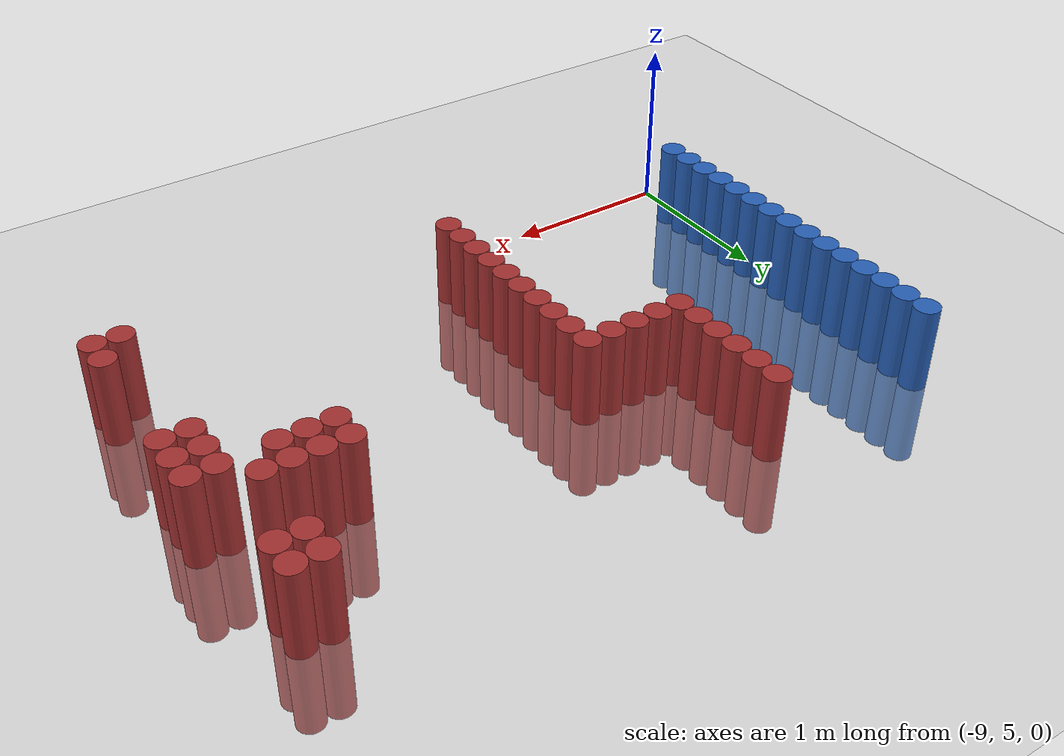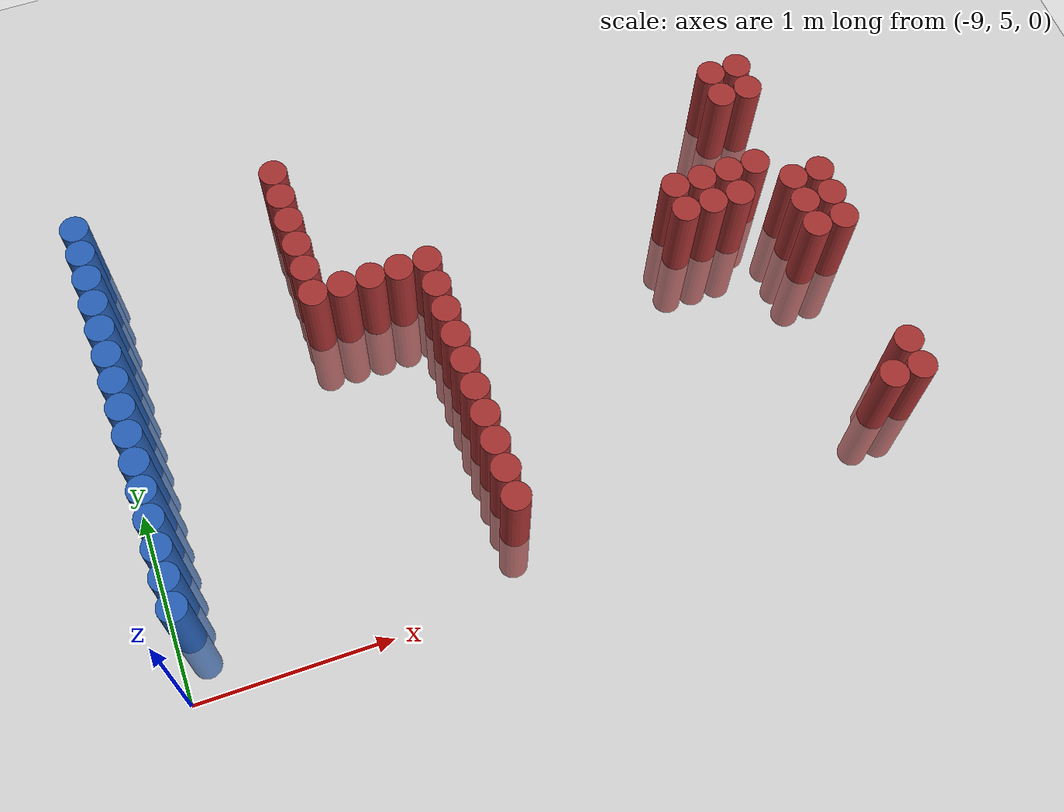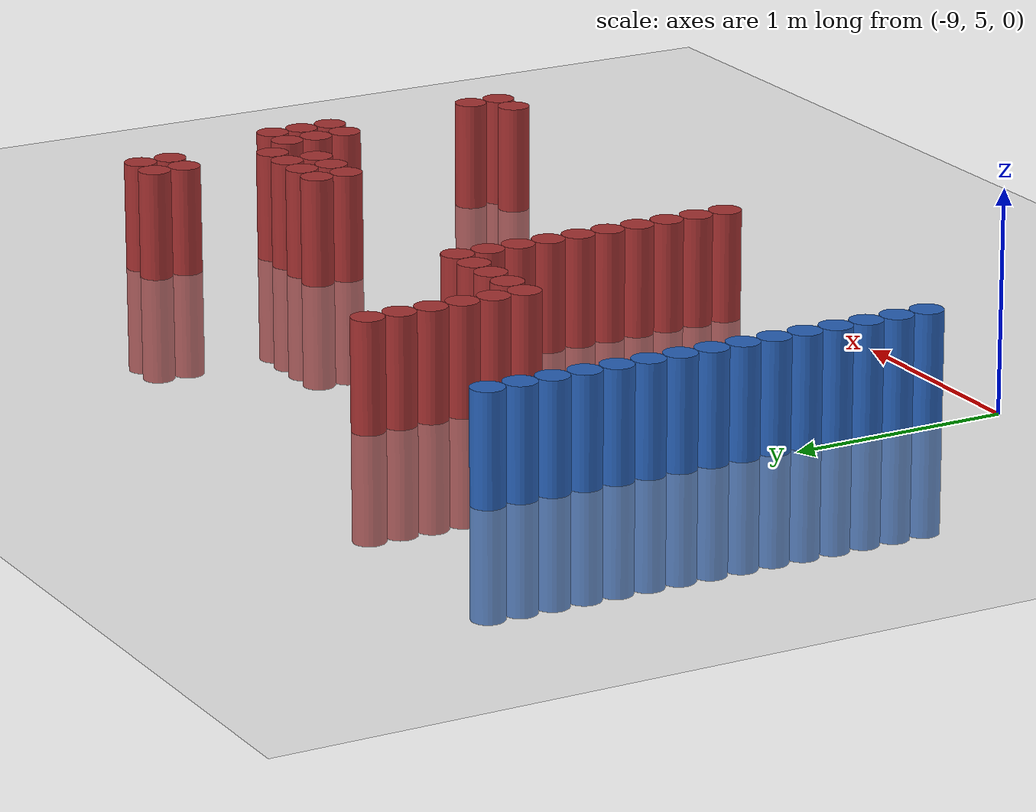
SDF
<sdf version="1.6">
 <world name="default">
  <model name="ground_plane">
   <static>1</static>
   <link name="link">
    <collision name="collision">
     <geometry><plane><normal>0 0 1</normal><size>100 100</size></plane></geometry>
     <surface><friction><ode><mu>100</mu><mu2>50</mu2></ode></friction></surface>
    </collision>
    <visual name="visual">
     <cast_shadows>0</cast_shadows>
     <geometry><plane><normal>0 0 1</normal><size>100 100</size></plane></geometry>
     <material>
      <script><uri>file://media/materials/scripts/gazebo.material</uri><name>Gazebo/Grey</name></script>
     </material>
    </visual>
   </link>
  </model>
  <model name="unit_cylinder_126">
   <static>1</static>
   <pose>-8.925000 5.325000 0.000000 0.000000 0.000000 0.000000</pose>
   <link name="link">
    <inertial>
     <mass>1</mass>
     <inertia><ixx>0.145833</ixx><ixy>0</ixy><ixz>0</ixz><iyy>0.145833</iyy><iyz>0</iyz><izz>0.125</izz></inertia>
    </inertial>
    <collision name="collision">
     <geometry><cylinder><radius>0.075000</radius><length>1</length></cylinder></geometry>
    </collision>
    <visual name="visual">
     <geometry><cylinder><radius>0.075000</radius><length>1</length></cylinder></geometry>
     <material>
      <ambient>0.152000 0.379000 0.720000 1</ambient>
      <diffuse>0.152000 0.379000 0.720000 1</diffuse>
     </material>
     <material>
      <script><name>Gazebo/Grey</name><uri>file://media/materials/scripts/gazebo.material</uri></script>
     </material>
    </visual>
   </link>
  </model>
  <model name="unit_cylinder_127">
   <static>1</static>
   <pose>-8.925000 5.475000 0.000000 0.000000 0.000000 0.000000</pose>
   <link name="link">
    <inertial>
     <mass>1</mass>
     <inertia><ixx>0.145833</ixx><ixy>0</ixy><ixz>0</ixz><iyy>0.145833</iyy><iyz>0</iyz><izz>0.125</izz></inertia>
    </inertial>
    <collision name="collision">
     <geometry><cylinder><radius>0.075000</radius><length>1</length></cylinder></geometry>
    </collision>
    <visual name="visual">
     <geometry><cylinder><radius>0.075000</radius><length>1</length></cylinder></geometry>
     <material>
      <ambient>0.152000 0.379000 0.720000 1</ambient>
      <diffuse>0.152000 0.379000 0.720000 1</diffuse>
     </material>
     <material>
      <script><name>Gazebo/Grey</name><uri>file://media/materials/scripts/gazebo.material</uri></script>
     </material>
    </visual>
   </link>
  </model>
  <model name="unit_cylinder_128">
   <static>1</static>
   <pose>-8.925000 5.625000 0.000000 0.000000 0.000000 0.000000</pose>
   <link name="link">
    <inertial>
     <mass>1</mass>
     <inertia><ixx>0.145833</ixx><ixy>0</ixy><ixz>0</ixz><iyy>0.145833</iyy><iyz>0</iyz><izz>0.125</izz></inertia>
    </inertial>
    <collision name="collision">
     <geometry><cylinder><radius>0.075000</radius><length>1</length></cylinder></geometry>
    </collision>
    <visual name="visual">
     <geometry><cylinder><radius>0.075000</radius><length>1</length></cylinder></geometry>
     <material>
      <ambient>0.152000 0.379000 0.720000 1</ambient>
      <diffuse>0.152000 0.379000 0.720000 1</diffuse>
     </material>
     <material>
      <script><name>Gazebo/Grey</name><uri>file://media/materials/scripts/gazebo.material</uri></script>
     </material>
    </visual>
   </link>
  </model>
  <model name="unit_cylinder_129">
   <static>1</static>
   <pose>-8.925000 5.775000 0.000000 0.000000 0.000000 0.000000</pose>
   <link name="link">
    <inertial>
     <mass>1</mass>
     <inertia><ixx>0.145833</ixx><ixy>0</ixy><ixz>0</ixz><iyy>0.145833</iyy><iyz>0</iyz><izz>0.125</izz></inertia>
    </inertial>
    <collision name="collision">
     <geometry><cylinder><radius>0.075000</radius><length>1</length></cylinder></geometry>
    </collision>
    <visual name="visual">
     <geometry><cylinder><radius>0.075000</radius><length>1</length></cylinder></geometry>
     <material>
      <ambient>0.152000 0.379000 0.720000 1</ambient>
      <diffuse>0.152000 0.379000 0.720000 1</diffuse>
     </material>
     <material>
      <script><name>Gazebo/Grey</name><uri>file://media/materials/scripts/gazebo.material</uri></script>
     </material>
    </visual>
   </link>
  </model>
  <model name="unit_cylinder_130">
   <static>1</static>
   <pose>-8.925000 5.925000 0.000000 0.000000 0.000000 0.000000</pose>
   <link name="link">
    <inertial>
     <mass>1</mass>
     <inertia><ixx>0.145833</ixx><ixy>0</ixy><ixz>0</ixz><iyy>0.145833</iyy><iyz>0</iyz><izz>0.125</izz></inertia>
    </inertial>
    <collision name="collision">
     <geometry><cylinder><radius>0.075000</radius><length>1</length></cylinder></geometry>
    </collision>
    <visual name="visual">
     <geometry><cylinder><radius>0.075000</radius><length>1</length></cylinder></geometry>
     <material>
      <ambient>0.152000 0.379000 0.720000 1</ambient>
      <diffuse>0.152000 0.379000 0.720000 1</diffuse>
     </material>
     <material>
      <script><name>Gazebo/Grey</name><uri>file://media/materials/scripts/gazebo.material</uri></script>
     </material>
    </visual>
   </link>
  </model>
  <model name="unit_cylinder_131">
   <static>1</static>
   <pose>-8.925000 6.075000 0.000000 0.000000 0.000000 0.000000</pose>
   <link name="link">
    <inertial>
     <mass>1</mass>
     <inertia><ixx>0.145833</ixx><ixy>0</ixy><ixz>0</ixz><iyy>0.145833</iyy><iyz>0</iyz><izz>0.125</izz></inertia>
    </inertial>
    <collision name="collision">
     <geometry><cylinder><radius>0.075000</radius><length>1</length></cylinder></geometry>
    </collision>
    <visual name="visual">
     <geometry><cylinder><radius>0.075000</radius><length>1</length></cylinder></geometry>
     <material>
      <ambient>0.152000 0.379000 0.720000 1</ambient>
      <diffuse>0.152000 0.379000 0.720000 1</diffuse>
     </material>
     <material>
      <script><name>Gazebo/Grey</name><uri>file://media/materials/scripts/gazebo.material</uri></script>
     </material>
    </visual>
   </link>
  </model>
  <model name="unit_cylinder_132">
   <static>1</static>
   <pose>-8.925000 6.225000 0.000000 0.000000 0.000000 0.000000</pose>
   <link name="link">
    <inertial>
     <mass>1</mass>
     <inertia><ixx>0.145833</ixx><ixy>0</ixy><ixz>0</ixz><iyy>0.145833</iyy><iyz>0</iyz><izz>0.125</izz></inertia>
    </inertial>
    <collision name="collision">
     <geometry><cylinder><radius>0.075000</radius><length>1</length></cylinder></geometry>
    </collision>
    <visual name="visual">
     <geometry><cylinder><radius>0.075000</radius><length>1</length></cylinder></geometry>
     <material>
      <ambient>0.152000 0.379000 0.720000 1</ambient>
      <diffuse>0.152000 0.379000 0.720000 1</diffuse>
     </material>
     <material>
      <script><name>Gazebo/Grey</name><uri>file://media/materials/scripts/gazebo.material</uri></script>
     </material>
    </visual>
   </link>
  </model>
  <model name="unit_cylinder_133">
   <static>1</static>
   <pose>-8.925000 6.375000 0.000000 0.000000 0.000000 0.000000</pose>
   <link name="link">
    <inertial>
     <mass>1</mass>
     <inertia><ixx>0.145833</ixx><ixy>0</ixy><ixz>0</ixz><iyy>0.145833</iyy><iyz>0</iyz><izz>0.125</izz></inertia>
    </inertial>
    <collision name="collision">
     <geometry><cylinder><radius>0.075000</radius><length>1</length></cylinder></geometry>
    </collision>
    <visual name="visual">
     <geometry><cylinder><radius>0.075000</radius><length>1</length></cylinder></geometry>
     <material>
      <ambient>0.152000 0.379000 0.720000 1</ambient>
      <diffuse>0.152000 0.379000 0.720000 1</diffuse>
     </material>
     <material>
      <script><name>Gazebo/Grey</name><uri>file://media/materials/scripts/gazebo.material</uri></script>
     </material>
    </visual>
   </link>
  </model>
  <model name="unit_cylinder_134">
   <static>1</static>
   <pose>-8.925000 6.525000 0.000000 0.000000 0.000000 0.000000</pose>
   <link name="link">
    <inertial>
     <mass>1</mass>
     <inertia><ixx>0.145833</ixx><ixy>0</ixy><ixz>0</ixz><iyy>0.145833</iyy><iyz>0</iyz><izz>0.125</izz></inertia>
    </inertial>
    <collision name="collision">
     <geometry><cylinder><radius>0.075000</radius><length>1</length></cylinder></geometry>
    </collision>
    <visual name="visual">
     <geometry><cylinder><radius>0.075000</radius><length>1</length></cylinder></geometry>
     <material>
      <ambient>0.152000 0.379000 0.720000 1</ambient>
      <diffuse>0.152000 0.379000 0.720000 1</diffuse>
     </material>
     <material>
      <script><name>Gazebo/Grey</name><uri>file://media/materials/scripts/gazebo.material</uri></script>
     </material>
    </visual>
   </link>
  </model>
  <model name="unit_cylinder_135">
   <static>1</static>
   <pose>-8.925000 6.675000 0.000000 0.000000 0.000000 0.000000</pose>
   <link name="link">
    <inertial>
     <mass>1</mass>
     <inertia><ixx>0.145833</ixx><ixy>0</ixy><ixz>0</ixz><iyy>0.145833</iyy><iyz>0</iyz><izz>0.125</izz></inertia>
    </inertial>
    <collision name="collision">
     <geometry><cylinder><radius>0.075000</radius><length>1</length></cylinder></geometry>
    </collision>
    <visual name="visual">
     <geometry><cylinder><radius>0.075000</radius><length>1</length></cylinder></geometry>
     <material>
      <ambient>0.152000 0.379000 0.720000 1</ambient>
      <diffuse>0.152000 0.379000 0.720000 1</diffuse>
     </material>
     <material>
      <script><name>Gazebo/Grey</name><uri>file://media/materials/scripts/gazebo.material</uri></script>
     </material>
    </visual>
   </link>
  </model>
  <model name="unit_cylinder_136">
   <static>1</static>
   <pose>-8.925000 6.825000 0.000000 0.000000 0.000000 0.000000</pose>
   <link name="link">
    <inertial>
     <mass>1</mass>
     <inertia><ixx>0.145833</ixx><ixy>0</ixy><ixz>0</ixz><iyy>0.145833</iyy><iyz>0</iyz><izz>0.125</izz></inertia>
    </inertial>
    <collision name="collision">
     <geometry><cylinder><radius>0.075000</radius><length>1</length></cylinder></geometry>
    </collision>
    <visual name="visual">
     <geometry><cylinder><radius>0.075000</radius><length>1</length></cylinder></geometry>
     <material>
      <ambient>0.152000 0.379000 0.720000 1</ambient>
      <diffuse>0.152000 0.379000 0.720000 1</diffuse>
     </material>
     <material>
      <script><name>Gazebo/Grey</name><uri>file://media/materials/scripts/gazebo.material</uri></script>
     </material>
    </visual>
   </link>
  </model>
  <model name="unit_cylinder_137">
   <static>1</static>
   <pose>-8.925000 6.975000 0.000000 0.000000 0.000000 0.000000</pose>
   <link name="link">
    <inertial>
     <mass>1</mass>
     <inertia><ixx>0.145833</ixx><ixy>0</ixy><ixz>0</ixz><iyy>0.145833</iyy><iyz>0</iyz><izz>0.125</izz></inertia>
    </inertial>
    <collision name="collision">
     <geometry><cylinder><radius>0.075000</radius><length>1</length></cylinder></geometry>
    </collision>
    <visual name="visual">
     <geometry><cylinder><radius>0.075000</radius><length>1</length></cylinder></geometry>
     <material>
      <ambient>0.152000 0.379000 0.720000 1</ambient>
      <diffuse>0.152000 0.379000 0.720000 1</diffuse>
     </material>
     <material>
      <script><name>Gazebo/Grey</name><uri>file://media/materials/scripts/gazebo.material</uri></script>
     </material>
    </visual>
   </link>
  </model>
  <model name="unit_cylinder_138">
   <static>1</static>
   <pose>-8.925000 7.125000 0.000000 0.000000 0.000000 0.000000</pose>
   <link name="link">
    <inertial>
     <mass>1</mass>
     <inertia><ixx>0.145833</ixx><ixy>0</ixy><ixz>0</ixz><iyy>0.145833</iyy><iyz>0</iyz><izz>0.125</izz></inertia>
    </inertial>
    <collision name="collision">
     <geometry><cylinder><radius>0.075000</radius><length>1</length></cylinder></geometry>
    </collision>
    <visual name="visual">
     <geometry><cylinder><radius>0.075000</radius><length>1</length></cylinder></geometry>
     <material>
      <ambient>0.152000 0.379000 0.720000 1</ambient>
      <diffuse>0.152000 0.379000 0.720000 1</diffuse>
     </material>
     <material>
      <script><name>Gazebo/Grey</name><uri>file://media/materials/scripts/gazebo.material</uri></script>
     </material>
    </visual>
   </link>
  </model>
  <model name="unit_cylinder_139">
   <static>1</static>
   <pose>-8.925000 7.275000 0.000000 0.000000 0.000000 0.000000</pose>
   <link name="link">
    <inertial>
     <mass>1</mass>
     <inertia><ixx>0.145833</ixx><ixy>0</ixy><ixz>0</ixz><iyy>0.145833</iyy><iyz>0</iyz><izz>0.125</izz></inertia>
    </inertial>
    <collision name="collision">
     <geometry><cylinder><radius>0.075000</radius><length>1</length></cylinder></geometry>
    </collision>
    <visual name="visual">
     <geometry><cylinder><radius>0.075000</radius><length>1</length></cylinder></geometry>
     <material>
      <ambient>0.152000 0.379000 0.720000 1</ambient>
      <diffuse>0.152000 0.379000 0.720000 1</diffuse>
     </material>
     <material>
      <script><name>Gazebo/Grey</name><uri>file://media/materials/scripts/gazebo.material</uri></script>
     </material>
    </visual>
   </link>
  </model>
  <model name="unit_cylinder_140">
   <static>1</static>
   <pose>-8.925000 7.425000 0.000000 0.000000 0.000000 0.000000</pose>
   <link name="link">
    <inertial>
     <mass>1</mass>
     <inertia><ixx>0.145833</ixx><ixy>0</ixy><ixz>0</ixz><iyy>0.145833</iyy><iyz>0</iyz><izz>0.125</izz></inertia>
    </inertial>
    <collision name="collision">
     <geometry><cylinder><radius>0.075000</radius><length>1</length></cylinder></geometry>
    </collision>
    <visual name="visual">
     <geometry><cylinder><radius>0.075000</radius><length>1</length></cylinder></geometry>
     <material>
      <ambient>0.152000 0.379000 0.720000 1</ambient>
      <diffuse>0.152000 0.379000 0.720000 1</diffuse>
     </material>
     <material>
      <script><name>Gazebo/Grey</name><uri>file://media/materials/scripts/gazebo.material</uri></script>
     </material>
    </visual>
   </link>
  </model>
  <model name="unit_cylinder_168">
   <static>1</static>
   <pose>-7.875000 6.675000 0.000000 0.000000 0.000000 0.000000</pose>
   <link name="link">
    <inertial>
     <mass>1</mass>
     <inertia><ixx>0.145833</ixx><ixy>0</ixy><ixz>0</ixz><iyy>0.145833</iyy><iyz>0</iyz><izz>0.125</izz></inertia>
    </inertial>
    <collision name="collision">
     <geometry><cylinder><radius>0.075000</radius><length>1</length></cylinder></geometry>
    </collision>
    <visual name="visual">
     <geometry><cylinder><radius>0.075000</radius><length>1</length></cylinder></geometry>
     <material>
      <ambient>0.648000 0.192000 0.192000 1</ambient>
      <diffuse>0.648000 0.192000 0.192000 1</diffuse>
     </material>
     <material>
      <script><name>Gazebo/Grey</name><uri>file://media/materials/scripts/gazebo.material</uri></script>
     </material>
    </visual>
   </link>
  </model>
  <model name="unit_cylinder_169">
   <static>1</static>
   <pose>-7.875000 6.825000 0.000000 0.000000 0.000000 0.000000</pose>
   <link name="link">
    <inertial>
     <mass>1</mass>
     <inertia><ixx>0.145833</ixx><ixy>0</ixy><ixz>0</ixz><iyy>0.145833</iyy><iyz>0</iyz><izz>0.125</izz></inertia>
    </inertial>
    <collision name="collision">
     <geometry><cylinder><radius>0.075000</radius><length>1</length></cylinder></geometry>
    </collision>
    <visual name="visual">
     <geometry><cylinder><radius>0.075000</radius><length>1</length></cylinder></geometry>
     <material>
      <ambient>0.648000 0.192000 0.192000 1</ambient>
      <diffuse>0.648000 0.192000 0.192000 1</diffuse>
     </material>
     <material>
      <script><name>Gazebo/Grey</name><uri>file://media/materials/scripts/gazebo.material</uri></script>
     </material>
    </visual>
   </link>
  </model>
  <model name="unit_cylinder_170">
   <static>1</static>
   <pose>-7.875000 6.975000 0.000000 0.000000 0.000000 0.000000</pose>
   <link name="link">
    <inertial>
     <mass>1</mass>
     <inertia><ixx>0.145833</ixx><ixy>0</ixy><ixz>0</ixz><iyy>0.145833</iyy><iyz>0</iyz><izz>0.125</izz></inertia>
    </inertial>
    <collision name="collision">
     <geometry><cylinder><radius>0.075000</radius><length>1</length></cylinder></geometry>
    </collision>
    <visual name="visual">
     <geometry><cylinder><radius>0.075000</radius><length>1</length></cylinder></geometry>
     <material>
      <ambient>0.648000 0.192000 0.192000 1</ambient>
      <diffuse>0.648000 0.192000 0.192000 1</diffuse>
     </material>
     <material>
      <script><name>Gazebo/Grey</name><uri>file://media/materials/scripts/gazebo.material</uri></script>
     </material>
    </visual>
   </link>
  </model>
  <model name="unit_cylinder_171">
   <static>1</static>
   <pose>-7.875000 7.125000 0.000000 0.000000 0.000000 0.000000</pose>
   <link name="link">
    <inertial>
     <mass>1</mass>
     <inertia><ixx>0.145833</ixx><ixy>0</ixy><ixz>0</ixz><iyy>0.145833</iyy><iyz>0</iyz><izz>0.125</izz></inertia>
    </inertial>
    <collision name="collision">
     <geometry><cylinder><radius>0.075000</radius><length>1</length></cylinder></geometry>
    </collision>
    <visual name="visual">
     <geometry><cylinder><radius>0.075000</radius><length>1</length></cylinder></geometry>
     <material>
      <ambient>0.648000 0.192000 0.192000 1</ambient>
      <diffuse>0.648000 0.192000 0.192000 1</diffuse>
     </material>
     <material>
      <script><name>Gazebo/Grey</name><uri>file://media/materials/scripts/gazebo.material</uri></script>
     </material>
    </visual>
   </link>
  </model>
  <model name="unit_cylinder_172">
   <static>1</static>
   <pose>-7.875000 7.275000 0.000000 0.000000 0.000000 0.000000</pose>
   <link name="link">
    <inertial>
     <mass>1</mass>
     <inertia><ixx>0.145833</ixx><ixy>0</ixy><ixz>0</ixz><iyy>0.145833</iyy><iyz>0</iyz><izz>0.125</izz></inertia>
    </inertial>
    <collision name="collision">
     <geometry><cylinder><radius>0.075000</radius><length>1</length></cylinder></geometry>
    </collision>
    <visual name="visual">
     <geometry><cylinder><radius>0.075000</radius><length>1</length></cylinder></geometry>
     <material>
      <ambient>0.648000 0.192000 0.192000 1</ambient>
      <diffuse>0.648000 0.192000 0.192000 1</diffuse>
     </material>
     <material>
      <script><name>Gazebo/Grey</name><uri>file://media/materials/scripts/gazebo.material</uri></script>
     </material>
    </visual>
   </link>
  </model>
  <model name="unit_cylinder_173">
   <static>1</static>
   <pose>-7.875000 7.425000 0.000000 0.000000 0.000000 0.000000</pose>
   <link name="link">
    <inertial>
     <mass>1</mass>
     <inertia><ixx>0.145833</ixx><ixy>0</ixy><ixz>0</ixz><iyy>0.145833</iyy><iyz>0</iyz><izz>0.125</izz></inertia>
    </inertial>
    <collision name="collision">
     <geometry><cylinder><radius>0.075000</radius><length>1</length></cylinder></geometry>
    </collision>
    <visual name="visual">
     <geometry><cylinder><radius>0.075000</radius><length>1</length></cylinder></geometry>
     <material>
      <ambient>0.648000 0.192000 0.192000 1</ambient>
      <diffuse>0.648000 0.192000 0.192000 1</diffuse>
     </material>
     <material>
      <script><name>Gazebo/Grey</name><uri>file://media/materials/scripts/gazebo.material</uri></script>
     </material>
    </visual>
   </link>
  </model>
  <model name="unit_cylinder_189">
   <static>1</static>
   <pose>-7.725000 6.675000 0.000000 0.000000 0.000000 0.000000</pose>
   <link name="link">
    <inertial>
     <mass>1</mass>
     <inertia><ixx>0.145833</ixx><ixy>0</ixy><ixz>0</ixz><iyy>0.145833</iyy><iyz>0</iyz><izz>0.125</izz></inertia>
    </inertial>
    <collision name="collision">
     <geometry><cylinder><radius>0.075000</radius><length>1</length></cylinder></geometry>
    </collision>
    <visual name="visual">
     <geometry><cylinder><radius>0.075000</radius><length>1</length></cylinder></geometry>
     <material>
      <ambient>0.648000 0.192000 0.192000 1</ambient>
      <diffuse>0.648000 0.192000 0.192000 1</diffuse>
     </material>
     <material>
      <script><name>Gazebo/Grey</name><uri>file://media/materials/scripts/gazebo.material</uri></script>
     </material>
    </visual>
   </link>
  </model>
  <model name="unit_cylinder_192">
   <static>1</static>
   <pose>-7.575000 6.675000 0.000000 0.000000 0.000000 0.000000</pose>
   <link name="link">
    <inertial>
     <mass>1</mass>
     <inertia><ixx>0.145833</ixx><ixy>0</ixy><ixz>0</ixz><iyy>0.145833</iyy><iyz>0</iyz><izz>0.125</izz></inertia>
    </inertial>
    <collision name="collision">
     <geometry><cylinder><radius>0.075000</radius><length>1</length></cylinder></geometry>
    </collision>
    <visual name="visual">
     <geometry><cylinder><radius>0.075000</radius><length>1</length></cylinder></geometry>
     <material>
      <ambient>0.648000 0.192000 0.192000 1</ambient>
      <diffuse>0.648000 0.192000 0.192000 1</diffuse>
     </material>
     <material>
      <script><name>Gazebo/Grey</name><uri>file://media/materials/scripts/gazebo.material</uri></script>
     </material>
    </visual>
   </link>
  </model>
  <model name="unit_cylinder_194">
   <static>1</static>
   <pose>-7.425000 6.675000 0.000000 0.000000 0.000000 0.000000</pose>
   <link name="link">
    <inertial>
     <mass>1</mass>
     <inertia><ixx>0.145833</ixx><ixy>0</ixy><ixz>0</ixz><iyy>0.145833</iyy><iyz>0</iyz><izz>0.125</izz></inertia>
    </inertial>
    <collision name="collision">
     <geometry><cylinder><radius>0.075000</radius><length>1</length></cylinder></geometry>
    </collision>
    <visual name="visual">
     <geometry><cylinder><radius>0.075000</radius><length>1</length></cylinder></geometry>
     <material>
      <ambient>0.648000 0.192000 0.192000 1</ambient>
      <diffuse>0.648000 0.192000 0.192000 1</diffuse>
     </material>
     <material>
      <script><name>Gazebo/Grey</name><uri>file://media/materials/scripts/gazebo.material</uri></script>
     </material>
    </visual>
   </link>
  </model>
  <model name="unit_cylinder_196">
   <static>1</static>
   <pose>-7.275000 5.325000 0.000000 0.000000 0.000000 0.000000</pose>
   <link name="link">
    <inertial>
     <mass>1</mass>
     <inertia><ixx>0.145833</ixx><ixy>0</ixy><ixz>0</ixz><iyy>0.145833</iyy><iyz>0</iyz><izz>0.125</izz></inertia>
    </inertial>
    <collision name="collision">
     <geometry><cylinder><radius>0.075000</radius><length>1</length></cylinder></geometry>
    </collision>
    <visual name="visual">
     <geometry><cylinder><radius>0.075000</radius><length>1</length></cylinder></geometry>
     <material>
      <ambient>0.648000 0.192000 0.192000 1</ambient>
      <diffuse>0.648000 0.192000 0.192000 1</diffuse>
     </material>
     <material>
      <script><name>Gazebo/Grey</name><uri>file://media/materials/scripts/gazebo.material</uri></script>
     </material>
    </visual>
   </link>
  </model>
  <model name="unit_cylinder_197">
   <static>1</static>
   <pose>-7.275000 5.475000 0.000000 0.000000 0.000000 0.000000</pose>
   <link name="link">
    <inertial>
     <mass>1</mass>
     <inertia><ixx>0.145833</ixx><ixy>0</ixy><ixz>0</ixz><iyy>0.145833</iyy><iyz>0</iyz><izz>0.125</izz></inertia>
    </inertial>
    <collision name="collision">
     <geometry><cylinder><radius>0.075000</radius><length>1</length></cylinder></geometry>
    </collision>
    <visual name="visual">
     <geometry><cylinder><radius>0.075000</radius><length>1</length></cylinder></geometry>
     <material>
      <ambient>0.648000 0.192000 0.192000 1</ambient>
      <diffuse>0.648000 0.192000 0.192000 1</diffuse>
     </material>
     <material>
      <script><name>Gazebo/Grey</name><uri>file://media/materials/scripts/gazebo.material</uri></script>
     </material>
    </visual>
   </link>
  </model>
  <model name="unit_cylinder_198">
   <static>1</static>
   <pose>-7.275000 5.625000 0.000000 0.000000 0.000000 0.000000</pose>
   <link name="link">
    <inertial>
     <mass>1</mass>
     <inertia><ixx>0.145833</ixx><ixy>0</ixy><ixz>0</ixz><iyy>0.145833</iyy><iyz>0</iyz><izz>0.125</izz></inertia>
    </inertial>
    <collision name="collision">
     <geometry><cylinder><radius>0.075000</radius><length>1</length></cylinder></geometry>
    </collision>
    <visual name="visual">
     <geometry><cylinder><radius>0.075000</radius><length>1</length></cylinder></geometry>
     <material>
      <ambient>0.648000 0.192000 0.192000 1</ambient>
      <diffuse>0.648000 0.192000 0.192000 1</diffuse>
     </material>
     <material>
      <script><name>Gazebo/Grey</name><uri>file://media/materials/scripts/gazebo.material</uri></script>
     </material>
    </visual>
   </link>
  </model>
  <model name="unit_cylinder_199">
   <static>1</static>
   <pose>-7.275000 5.775000 0.000000 0.000000 0.000000 0.000000</pose>
   <link name="link">
    <inertial>
     <mass>1</mass>
     <inertia><ixx>0.145833</ixx><ixy>0</ixy><ixz>0</ixz><iyy>0.145833</iyy><iyz>0</iyz><izz>0.125</izz></inertia>
    </inertial>
    <collision name="collision">
     <geometry><cylinder><radius>0.075000</radius><length>1</length></cylinder></geometry>
    </collision>
    <visual name="visual">
     <geometry><cylinder><radius>0.075000</radius><length>1</length></cylinder></geometry>
     <material>
      <ambient>0.648000 0.192000 0.192000 1</ambient>
      <diffuse>0.648000 0.192000 0.192000 1</diffuse>
     </material>
     <material>
      <script><name>Gazebo/Grey</name><uri>file://media/materials/scripts/gazebo.material</uri></script>
     </material>
    </visual>
   </link>
  </model>
  <model name="unit_cylinder_200">
   <static>1</static>
   <pose>-7.275000 5.925000 0.000000 0.000000 0.000000 0.000000</pose>
   <link name="link">
    <inertial>
     <mass>1</mass>
     <inertia><ixx>0.145833</ixx><ixy>0</ixy><ixz>0</ixz><iyy>0.145833</iyy><iyz>0</iyz><izz>0.125</izz></inertia>
    </inertial>
    <collision name="collision">
     <geometry><cylinder><radius>0.075000</radius><length>1</length></cylinder></geometry>
    </collision>
    <visual name="visual">
     <geometry><cylinder><radius>0.075000</radius><length>1</length></cylinder></geometry>
     <material>
      <ambient>0.648000 0.192000 0.192000 1</ambient>
      <diffuse>0.648000 0.192000 0.192000 1</diffuse>
     </material>
     <material>
      <script><name>Gazebo/Grey</name><uri>file://media/materials/scripts/gazebo.material</uri></script>
     </material>
    </visual>
   </link>
  </model>
  <model name="unit_cylinder_201">
   <static>1</static>
   <pose>-7.275000 6.075000 0.000000 0.000000 0.000000 0.000000</pose>
   <link name="link">
    <inertial>
     <mass>1</mass>
     <inertia><ixx>0.145833</ixx><ixy>0</ixy><ixz>0</ixz><iyy>0.145833</iyy><iyz>0</iyz><izz>0.125</izz></inertia>
    </inertial>
    <collision name="collision">
     <geometry><cylinder><radius>0.075000</radius><length>1</length></cylinder></geometry>
    </collision>
    <visual name="visual">
     <geometry><cylinder><radius>0.075000</radius><length>1</length></cylinder></geometry>
     <material>
      <ambient>0.648000 0.192000 0.192000 1</ambient>
      <diffuse>0.648000 0.192000 0.192000 1</diffuse>
     </material>
     <material>
      <script><name>Gazebo/Grey</name><uri>file://media/materials/scripts/gazebo.material</uri></script>
     </material>
    </visual>
   </link>
  </model>
  <model name="unit_cylinder_202">
   <static>1</static>
   <pose>-7.275000 6.225000 0.000000 0.000000 0.000000 0.000000</pose>
   <link name="link">
    <inertial>
     <mass>1</mass>
     <inertia><ixx>0.145833</ixx><ixy>0</ixy><ixz>0</ixz><iyy>0.145833</iyy><iyz>0</iyz><izz>0.125</izz></inertia>
    </inertial>
    <collision name="collision">
     <geometry><cylinder><radius>0.075000</radius><length>1</length></cylinder></geometry>
    </collision>
    <visual name="visual">
     <geometry><cylinder><radius>0.075000</radius><length>1</length></cylinder></geometry>
     <material>
      <ambient>0.648000 0.192000 0.192000 1</ambient>
      <diffuse>0.648000 0.192000 0.192000 1</diffuse>
     </material>
     <material>
      <script><name>Gazebo/Grey</name><uri>file://media/materials/scripts/gazebo.material</uri></script>
     </material>
    </visual>
   </link>
  </model>
  <model name="unit_cylinder_203">
   <static>1</static>
   <pose>-7.275000 6.375000 0.000000 0.000000 0.000000 0.000000</pose>
   <link name="link">
    <inertial>
     <mass>1</mass>
     <inertia><ixx>0.145833</ixx><ixy>0</ixy><ixz>0</ixz><iyy>0.145833</iyy><iyz>0</iyz><izz>0.125</izz></inertia>
    </inertial>
    <collision name="collision">
     <geometry><cylinder><radius>0.075000</radius><length>1</length></cylinder></geometry>
    </collision>
    <visual name="visual">
     <geometry><cylinder><radius>0.075000</radius><length>1</length></cylinder></geometry>
     <material>
      <ambient>0.648000 0.192000 0.192000 1</ambient>
      <diffuse>0.648000 0.192000 0.192000 1</diffuse>
     </material>
     <material>
      <script><name>Gazebo/Grey</name><uri>file://media/materials/scripts/gazebo.material</uri></script>
     </material>
    </visual>
   </link>
  </model>
  <model name="unit_cylinder_204">
   <static>1</static>
   <pose>-7.275000 6.525000 0.000000 0.000000 0.000000 0.000000</pose>
   <link name="link">
    <inertial>
     <mass>1</mass>
     <inertia><ixx>0.145833</ixx><ixy>0</ixy><ixz>0</ixz><iyy>0.145833</iyy><iyz>0</iyz><izz>0.125</izz></inertia>
    </inertial>
    <collision name="collision">
     <geometry><cylinder><radius>0.075000</radius><length>1</length></cylinder></geometry>
    </collision>
    <visual name="visual">
     <geometry><cylinder><radius>0.075000</radius><length>1</length></cylinder></geometry>
     <material>
      <ambient>0.648000 0.192000 0.192000 1</ambient>
      <diffuse>0.648000 0.192000 0.192000 1</diffuse>
     </material>
     <material>
      <script><name>Gazebo/Grey</name><uri>file://media/materials/scripts/gazebo.material</uri></script>
     </material>
    </visual>
   </link>
  </model>
  <model name="unit_cylinder_205">
   <static>1</static>
   <pose>-7.275000 6.675000 0.000000 0.000000 0.000000 0.000000</pose>
   <link name="link">
    <inertial>
     <mass>1</mass>
     <inertia><ixx>0.145833</ixx><ixy>0</ixy><ixz>0</ixz><iyy>0.145833</iyy><iyz>0</iyz><izz>0.125</izz></inertia>
    </inertial>
    <collision name="collision">
     <geometry><cylinder><radius>0.075000</radius><length>1</length></cylinder></geometry>
    </collision>
    <visual name="visual">
     <geometry><cylinder><radius>0.075000</radius><length>1</length></cylinder></geometry>
     <material>
      <ambient>0.648000 0.192000 0.192000 1</ambient>
      <diffuse>0.648000 0.192000 0.192000 1</diffuse>
     </material>
     <material>
      <script><name>Gazebo/Grey</name><uri>file://media/materials/scripts/gazebo.material</uri></script>
     </material>
    </visual>
   </link>
  </model>
  <model name="unit_cylinder_222">
   <static>1</static>
   <pose>-5.925000 6.525000 0.000000 0.000000 0.000000 0.000000</pose>
   <link name="link">
    <inertial>
     <mass>1</mass>
     <inertia><ixx>0.145833</ixx><ixy>0</ixy><ixz>0</ixz><iyy>0.145833</iyy><iyz>0</iyz><izz>0.125</izz></inertia>
    </inertial>
    <collision name="collision">
     <geometry><cylinder><radius>0.075000</radius><length>1</length></cylinder></geometry>
    </collision>
    <visual name="visual">
     <geometry><cylinder><radius>0.075000</radius><length>1</length></cylinder></geometry>
     <material>
      <ambient>0.648000 0.192000 0.192000 1</ambient>
      <diffuse>0.648000 0.192000 0.192000 1</diffuse>
     </material>
     <material>
      <script><name>Gazebo/Grey</name><uri>file://media/materials/scripts/gazebo.material</uri></script>
     </material>
    </visual>
   </link>
  </model>
  <model name="unit_cylinder_223">
   <static>1</static>
   <pose>-5.925000 6.675000 0.000000 0.000000 0.000000 0.000000</pose>
   <link name="link">
    <inertial>
     <mass>1</mass>
     <inertia><ixx>0.145833</ixx><ixy>0</ixy><ixz>0</ixz><iyy>0.145833</iyy><iyz>0</iyz><izz>0.125</izz></inertia>
    </inertial>
    <collision name="collision">
     <geometry><cylinder><radius>0.075000</radius><length>1</length></cylinder></geometry>
    </collision>
    <visual name="visual">
     <geometry><cylinder><radius>0.075000</radius><length>1</length></cylinder></geometry>
     <material>
      <ambient>0.648000 0.192000 0.192000 1</ambient>
      <diffuse>0.648000 0.192000 0.192000 1</diffuse>
     </material>
     <material>
      <script><name>Gazebo/Grey</name><uri>file://media/materials/scripts/gazebo.material</uri></script>
     </material>
    </visual>
   </link>
  </model>
  <model name="unit_cylinder_227">
   <static>1</static>
   <pose>-5.775000 6.525000 0.000000 0.000000 0.000000 0.000000</pose>
   <link name="link">
    <inertial>
     <mass>1</mass>
     <inertia><ixx>0.145833</ixx><ixy>0</ixy><ixz>0</ixz><iyy>0.145833</iyy><iyz>0</iyz><izz>0.125</izz></inertia>
    </inertial>
    <collision name="collision">
     <geometry><cylinder><radius>0.075000</radius><length>1</length></cylinder></geometry>
    </collision>
    <visual name="visual">
     <geometry><cylinder><radius>0.075000</radius><length>1</length></cylinder></geometry>
     <material>
      <ambient>0.648000 0.192000 0.192000 1</ambient>
      <diffuse>0.648000 0.192000 0.192000 1</diffuse>
     </material>
     <material>
      <script><name>Gazebo/Grey</name><uri>file://media/materials/scripts/gazebo.material</uri></script>
     </material>
    </visual>
   </link>
  </model>
  <model name="unit_cylinder_228">
   <static>1</static>
   <pose>-5.775000 6.675000 0.000000 0.000000 0.000000 0.000000</pose>
   <link name="link">
    <inertial>
     <mass>1</mass>
     <inertia><ixx>0.145833</ixx><ixy>0</ixy><ixz>0</ixz><iyy>0.145833</iyy><iyz>0</iyz><izz>0.125</izz></inertia>
    </inertial>
    <collision name="collision">
     <geometry><cylinder><radius>0.075000</radius><length>1</length></cylinder></geometry>
    </collision>
    <visual name="visual">
     <geometry><cylinder><radius>0.075000</radius><length>1</length></cylinder></geometry>
     <material>
      <ambient>0.648000 0.192000 0.192000 1</ambient>
      <diffuse>0.648000 0.192000 0.192000 1</diffuse>
     </material>
     <material>
      <script><name>Gazebo/Grey</name><uri>file://media/materials/scripts/gazebo.material</uri></script>
     </material>
    </visual>
   </link>
  </model>
  <model name="unit_cylinder_231">
   <static>1</static>
   <pose>-5.625000 6.525000 0.000000 0.000000 0.000000 0.000000</pose>
   <link name="link">
    <inertial>
     <mass>1</mass>
     <inertia><ixx>0.145833</ixx><ixy>0</ixy><ixz>0</ixz><iyy>0.145833</iyy><iyz>0</iyz><izz>0.125</izz></inertia>
    </inertial>
    <collision name="collision">
     <geometry><cylinder><radius>0.075000</radius><length>1</length></cylinder></geometry>
    </collision>
    <visual name="visual">
     <geometry><cylinder><radius>0.075000</radius><length>1</length></cylinder></geometry>
     <material>
      <ambient>0.648000 0.192000 0.192000 1</ambient>
      <diffuse>0.648000 0.192000 0.192000 1</diffuse>
     </material>
     <material>
      <script><name>Gazebo/Grey</name><uri>file://media/materials/scripts/gazebo.material</uri></script>
     </material>
    </visual>
   </link>
  </model>
  <model name="unit_cylinder_232">
   <static>1</static>
   <pose>-5.625000 6.675000 0.000000 0.000000 0.000000 0.000000</pose>
   <link name="link">
    <inertial>
     <mass>1</mass>
     <inertia><ixx>0.145833</ixx><ixy>0</ixy><ixz>0</ixz><iyy>0.145833</iyy><iyz>0</iyz><izz>0.125</izz></inertia>
    </inertial>
    <collision name="collision">
     <geometry><cylinder><radius>0.075000</radius><length>1</length></cylinder></geometry>
    </collision>
    <visual name="visual">
     <geometry><cylinder><radius>0.075000</radius><length>1</length></cylinder></geometry>
     <material>
      <ambient>0.648000 0.192000 0.192000 1</ambient>
      <diffuse>0.648000 0.192000 0.192000 1</diffuse>
     </material>
     <material>
      <script><name>Gazebo/Grey</name><uri>file://media/materials/scripts/gazebo.material</uri></script>
     </material>
    </visual>
   </link>
  </model>
  <model name="unit_cylinder_235">
   <static>1</static>
   <pose>-5.475000 6.675000 0.000000 0.000000 0.000000 0.000000</pose>
   <link name="link">
    <inertial>
     <mass>1</mass>
     <inertia><ixx>0.145833</ixx><ixy>0</ixy><ixz>0</ixz><iyy>0.145833</iyy><iyz>0</iyz><izz>0.125</izz></inertia>
    </inertial>
    <collision name="collision">
     <geometry><cylinder><radius>0.075000</radius><length>1</length></cylinder></geometry>
    </collision>
    <visual name="visual">
     <geometry><cylinder><radius>0.075000</radius><length>1</length></cylinder></geometry>
     <material>
      <ambient>0.648000 0.192000 0.192000 1</ambient>
      <diffuse>0.648000 0.192000 0.192000 1</diffuse>
     </material>
     <material>
      <script><name>Gazebo/Grey</name><uri>file://media/materials/scripts/gazebo.material</uri></script>
     </material>
    </visual>
   </link>
  </model>
  <model name="unit_cylinder_236">
   <static>1</static>
   <pose>-5.475000 7.125000 0.000000 0.000000 0.000000 0.000000</pose>
   <link name="link">
    <inertial>
     <mass>1</mass>
     <inertia><ixx>0.145833</ixx><ixy>0</ixy><ixz>0</ixz><iyy>0.145833</iyy><iyz>0</iyz><izz>0.125</izz></inertia>
    </inertial>
    <collision name="collision">
     <geometry><cylinder><radius>0.075000</radius><length>1</length></cylinder></geometry>
    </collision>
    <visual name="visual">
     <geometry><cylinder><radius>0.075000</radius><length>1</length></cylinder></geometry>
     <material>
      <ambient>0.648000 0.192000 0.192000 1</ambient>
      <diffuse>0.648000 0.192000 0.192000 1</diffuse>
     </material>
     <material>
      <script><name>Gazebo/Grey</name><uri>file://media/materials/scripts/gazebo.material</uri></script>
     </material>
    </visual>
   </link>
  </model>
  <model name="unit_cylinder_237">
   <static>1</static>
   <pose>-5.475000 7.275000 0.000000 0.000000 0.000000 0.000000</pose>
   <link name="link">
    <inertial>
     <mass>1</mass>
     <inertia><ixx>0.145833</ixx><ixy>0</ixy><ixz>0</ixz><iyy>0.145833</iyy><iyz>0</iyz><izz>0.125</izz></inertia>
    </inertial>
    <collision name="collision">
     <geometry><cylinder><radius>0.075000</radius><length>1</length></cylinder></geometry>
    </collision>
    <visual name="visual">
     <geometry><cylinder><radius>0.075000</radius><length>1</length></cylinder></geometry>
     <material>
      <ambient>0.648000 0.192000 0.192000 1</ambient>
      <diffuse>0.648000 0.192000 0.192000 1</diffuse>
     </material>
     <material>
      <script><name>Gazebo/Grey</name><uri>file://media/materials/scripts/gazebo.material</uri></script>
     </material>
    </visual>
   </link>
  </model>
  <model name="unit_cylinder_238">
   <static>1</static>
   <pose>-5.325000 5.325000 0.000000 0.000000 0.000000 0.000000</pose>
   <link name="link">
    <inertial>
     <mass>1</mass>
     <inertia><ixx>0.145833</ixx><ixy>0</ixy><ixz>0</ixz><iyy>0.145833</iyy><iyz>0</iyz><izz>0.125</izz></inertia>
    </inertial>
    <collision name="collision">
     <geometry><cylinder><radius>0.075000</radius><length>1</length></cylinder></geometry>
    </collision>
    <visual name="visual">
     <geometry><cylinder><radius>0.075000</radius><length>1</length></cylinder></geometry>
     <material>
      <ambient>0.648000 0.192000 0.192000 1</ambient>
      <diffuse>0.648000 0.192000 0.192000 1</diffuse>
     </material>
     <material>
      <script><name>Gazebo/Grey</name><uri>file://media/materials/scripts/gazebo.material</uri></script>
     </material>
    </visual>
   </link>
  </model>
  <model name="unit_cylinder_239">
   <static>1</static>
   <pose>-5.325000 6.225000 0.000000 0.000000 0.000000 0.000000</pose>
   <link name="link">
    <inertial>
     <mass>1</mass>
     <inertia><ixx>0.145833</ixx><ixy>0</ixy><ixz>0</ixz><iyy>0.145833</iyy><iyz>0</iyz><izz>0.125</izz></inertia>
    </inertial>
    <collision name="collision">
     <geometry><cylinder><radius>0.075000</radius><length>1</length></cylinder></geometry>
    </collision>
    <visual name="visual">
     <geometry><cylinder><radius>0.075000</radius><length>1</length></cylinder></geometry>
     <material>
      <ambient>0.648000 0.192000 0.192000 1</ambient>
      <diffuse>0.648000 0.192000 0.192000 1</diffuse>
     </material>
     <material>
      <script><name>Gazebo/Grey</name><uri>file://media/materials/scripts/gazebo.material</uri></script>
     </material>
    </visual>
   </link>
  </model>
  <model name="unit_cylinder_240">
   <static>1</static>
   <pose>-5.325000 6.375000 0.000000 0.000000 0.000000 0.000000</pose>
   <link name="link">
    <inertial>
     <mass>1</mass>
     <inertia><ixx>0.145833</ixx><ixy>0</ixy><ixz>0</ixz><iyy>0.145833</iyy><iyz>0</iyz><izz>0.125</izz></inertia>
    </inertial>
    <collision name="collision">
     <geometry><cylinder><radius>0.075000</radius><length>1</length></cylinder></geometry>
    </collision>
    <visual name="visual">
     <geometry><cylinder><radius>0.075000</radius><length>1</length></cylinder></geometry>
     <material>
      <ambient>0.648000 0.192000 0.192000 1</ambient>
      <diffuse>0.648000 0.192000 0.192000 1</diffuse>
     </material>
     <material>
      <script><name>Gazebo/Grey</name><uri>file://media/materials/scripts/gazebo.material</uri></script>
     </material>
    </visual>
   </link>
  </model>
  <model name="unit_cylinder_241">
   <static>1</static>
   <pose>-5.325000 6.525000 0.000000 0.000000 0.000000 0.000000</pose>
   <link name="link">
    <inertial>
     <mass>1</mass>
     <inertia><ixx>0.145833</ixx><ixy>0</ixy><ixz>0</ixz><iyy>0.145833</iyy><iyz>0</iyz><izz>0.125</izz></inertia>
    </inertial>
    <collision name="collision">
     <geometry><cylinder><radius>0.075000</radius><length>1</length></cylinder></geometry>
    </collision>
    <visual name="visual">
     <geometry><cylinder><radius>0.075000</radius><length>1</length></cylinder></geometry>
     <material>
      <ambient>0.648000 0.192000 0.192000 1</ambient>
      <diffuse>0.648000 0.192000 0.192000 1</diffuse>
     </material>
     <material>
      <script><name>Gazebo/Grey</name><uri>file://media/materials/scripts/gazebo.material</uri></script>
     </material>
    </visual>
   </link>
  </model>
  <model name="unit_cylinder_242">
   <static>1</static>
   <pose>-5.325000 7.125000 0.000000 0.000000 0.000000 0.000000</pose>
   <link name="link">
    <inertial>
     <mass>1</mass>
     <inertia><ixx>0.145833</ixx><ixy>0</ixy><ixz>0</ixz><iyy>0.145833</iyy><iyz>0</iyz><izz>0.125</izz></inertia>
    </inertial>
    <collision name="collision">
     <geometry><cylinder><radius>0.075000</radius><length>1</length></cylinder></geometry>
    </collision>
    <visual name="visual">
     <geometry><cylinder><radius>0.075000</radius><length>1</length></cylinder></geometry>
     <material>
      <ambient>0.648000 0.192000 0.192000 1</ambient>
      <diffuse>0.648000 0.192000 0.192000 1</diffuse>
     </material>
     <material>
      <script><name>Gazebo/Grey</name><uri>file://media/materials/scripts/gazebo.material</uri></script>
     </material>
    </visual>
   </link>
  </model>
  <model name="unit_cylinder_243">
   <static>1</static>
   <pose>-5.325000 7.275000 0.000000 0.000000 0.000000 0.000000</pose>
   <link name="link">
    <inertial>
     <mass>1</mass>
     <inertia><ixx>0.145833</ixx><ixy>0</ixy><ixz>0</ixz><iyy>0.145833</iyy><iyz>0</iyz><izz>0.125</izz></inertia>
    </inertial>
    <collision name="collision">
     <geometry><cylinder><radius>0.075000</radius><length>1</length></cylinder></geometry>
    </collision>
    <visual name="visual">
     <geometry><cylinder><radius>0.075000</radius><length>1</length></cylinder></geometry>
     <material>
      <ambient>0.648000 0.192000 0.192000 1</ambient>
      <diffuse>0.648000 0.192000 0.192000 1</diffuse>
     </material>
     <material>
      <script><name>Gazebo/Grey</name><uri>file://media/materials/scripts/gazebo.material</uri></script>
     </material>
    </visual>
   </link>
  </model>
  <model name="unit_cylinder_245">
   <static>1</static>
   <pose>-5.175000 5.325000 0.000000 0.000000 0.000000 0.000000</pose>
   <link name="link">
    <inertial>
     <mass>1</mass>
     <inertia><ixx>0.145833</ixx><ixy>0</ixy><ixz>0</ixz><iyy>0.145833</iyy><iyz>0</iyz><izz>0.125</izz></inertia>
    </inertial>
    <collision name="collision">
     <geometry><cylinder><radius>0.075000</radius><length>1</length></cylinder></geometry>
    </collision>
    <visual name="visual">
     <geometry><cylinder><radius>0.075000</radius><length>1</length></cylinder></geometry>
     <material>
      <ambient>0.648000 0.192000 0.192000 1</ambient>
      <diffuse>0.648000 0.192000 0.192000 1</diffuse>
     </material>
     <material>
      <script><name>Gazebo/Grey</name><uri>file://media/materials/scripts/gazebo.material</uri></script>
     </material>
    </visual>
   </link>
  </model>
  <model name="unit_cylinder_246">
   <static>1</static>
   <pose>-5.175000 5.475000 0.000000 0.000000 0.000000 0.000000</pose>
   <link name="link">
    <inertial>
     <mass>1</mass>
     <inertia><ixx>0.145833</ixx><ixy>0</ixy><ixz>0</ixz><iyy>0.145833</iyy><iyz>0</iyz><izz>0.125</izz></inertia>
    </inertial>
    <collision name="collision">
     <geometry><cylinder><radius>0.075000</radius><length>1</length></cylinder></geometry>
    </collision>
    <visual name="visual">
     <geometry><cylinder><radius>0.075000</radius><length>1</length></cylinder></geometry>
     <material>
      <ambient>0.648000 0.192000 0.192000 1</ambient>
      <diffuse>0.648000 0.192000 0.192000 1</diffuse>
     </material>
     <material>
      <script><name>Gazebo/Grey</name><uri>file://media/materials/scripts/gazebo.material</uri></script>
     </material>
    </visual>
   </link>
  </model>
  <model name="unit_cylinder_247">
   <static>1</static>
   <pose>-5.175000 6.225000 0.000000 0.000000 0.000000 0.000000</pose>
   <link name="link">
    <inertial>
     <mass>1</mass>
     <inertia><ixx>0.145833</ixx><ixy>0</ixy><ixz>0</ixz><iyy>0.145833</iyy><iyz>0</iyz><izz>0.125</izz></inertia>
    </inertial>
    <collision name="collision">
     <geometry><cylinder><radius>0.075000</radius><length>1</length></cylinder></geometry>
    </collision>
    <visual name="visual">
     <geometry><cylinder><radius>0.075000</radius><length>1</length></cylinder></geometry>
     <material>
      <ambient>0.648000 0.192000 0.192000 1</ambient>
      <diffuse>0.648000 0.192000 0.192000 1</diffuse>
     </material>
     <material>
      <script><name>Gazebo/Grey</name><uri>file://media/materials/scripts/gazebo.material</uri></script>
     </material>
    </visual>
   </link>
  </model>
  <model name="unit_cylinder_248">
   <static>1</static>
   <pose>-5.175000 6.375000 0.000000 0.000000 0.000000 0.000000</pose>
   <link name="link">
    <inertial>
     <mass>1</mass>
     <inertia><ixx>0.145833</ixx><ixy>0</ixy><ixz>0</ixz><iyy>0.145833</iyy><iyz>0</iyz><izz>0.125</izz></inertia>
    </inertial>
    <collision name="collision">
     <geometry><cylinder><radius>0.075000</radius><length>1</length></cylinder></geometry>
    </collision>
    <visual name="visual">
     <geometry><cylinder><radius>0.075000</radius><length>1</length></cylinder></geometry>
     <material>
      <ambient>0.648000 0.192000 0.192000 1</ambient>
      <diffuse>0.648000 0.192000 0.192000 1</diffuse>
     </material>
     <material>
      <script><name>Gazebo/Grey</name><uri>file://media/materials/scripts/gazebo.material</uri></script>
     </material>
    </visual>
   </link>
  </model>
  <model name="unit_cylinder_249">
   <static>1</static>
   <pose>-5.175000 6.525000 0.000000 0.000000 0.000000 0.000000</pose>
   <link name="link">
    <inertial>
     <mass>1</mass>
     <inertia><ixx>0.145833</ixx><ixy>0</ixy><ixz>0</ixz><iyy>0.145833</iyy><iyz>0</iyz><izz>0.125</izz></inertia>
    </inertial>
    <collision name="collision">
     <geometry><cylinder><radius>0.075000</radius><length>1</length></cylinder></geometry>
    </collision>
    <visual name="visual">
     <geometry><cylinder><radius>0.075000</radius><length>1</length></cylinder></geometry>
     <material>
      <ambient>0.648000 0.192000 0.192000 1</ambient>
      <diffuse>0.648000 0.192000 0.192000 1</diffuse>
     </material>
     <material>
      <script><name>Gazebo/Grey</name><uri>file://media/materials/scripts/gazebo.material</uri></script>
     </material>
    </visual>
   </link>
  </model>
 </world>
</sdf>
